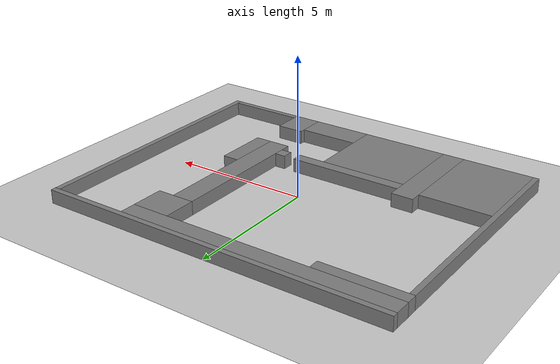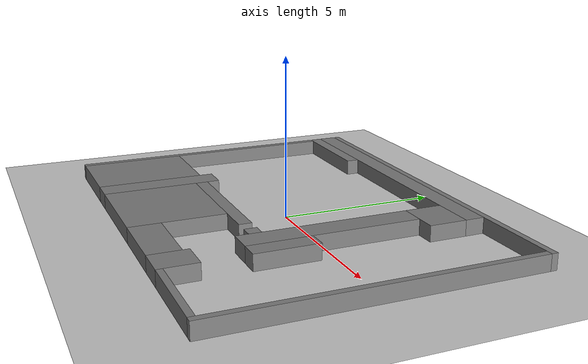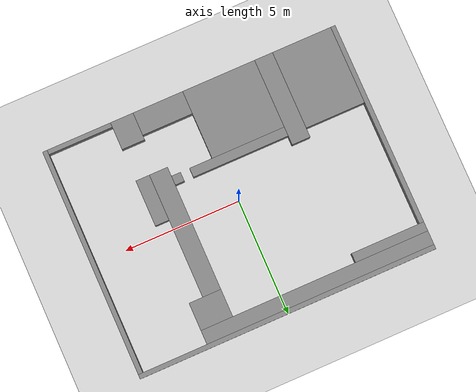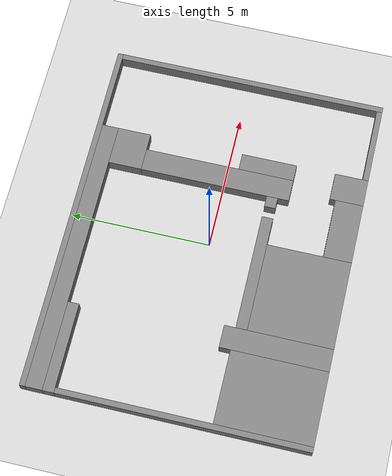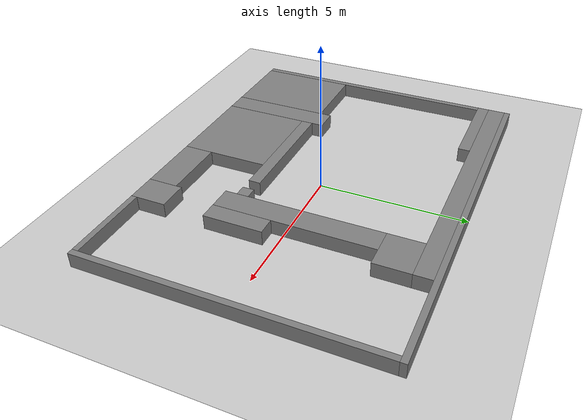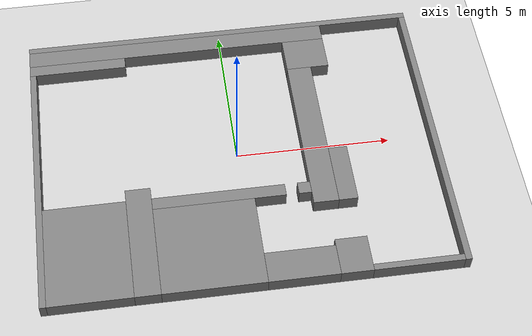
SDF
<?xml version="1.0"?>
<sdf version="1.8">
  <world name="project_map">
    <physics type="ode">
      <real_time_update_rate>1000.0</real_time_update_rate>
      <max_step_size>0.001</max_step_size>
      <real_time_factor>1</real_time_factor>
    </physics>
    <plugin filename="gz-sim-physics-system" name="gz::sim::systems::Physics"/>
    <plugin filename="gz-sim-user-commands-system" name="gz::sim::systems::UserCommands"/>
    <plugin filename="gz-sim-scene-broadcaster-system" name="gz::sim::systems::SceneBroadcaster"/>
    <plugin filename="gz-sim-sensors-system" name="gz::sim::systems::Sensors">
      <render_engine>ogre2</render_engine>
    </plugin>
    <plugin filename="gz-sim-imu-system" name="gz::sim::systems::Imu"/>

    <include>
      <uri>https://fuel.gazebosim.org/1.0/OpenRobotics/models/Ground Plane</uri>
    </include>
    <include>
      <uri>https://fuel.gazebosim.org/1.0/OpenRobotics/models/Sun</uri>
    </include>

    <model name="wall_0">
      <static>true</static>
      <pose>0.000 4.900 0.250 0 0 0</pose>
      <link name="link">
        <collision name="collision">
          <geometry><box><size>13.000 0.200 0.5</size></box></geometry>
        </collision>
        <visual name="visual">
          <geometry><box><size>13.000 0.200 0.5</size></box></geometry>
          <material>
            <ambient>0.3 0.3 0.3 1</ambient>
            <diffuse>0.5 0.5 0.5 1</diffuse>
          </material>
        </visual>
      </link>
    </model>
    <model name="wall_1">
      <static>true</static>
      <pose>-1.500 4.500 0.250 0 0 0</pose>
      <link name="link">
        <collision name="collision">
          <geometry><box><size>10.000 0.600 0.5</size></box></geometry>
        </collision>
        <visual name="visual">
          <geometry><box><size>10.000 0.600 0.5</size></box></geometry>
          <material>
            <ambient>0.3 0.3 0.3 1</ambient>
            <diffuse>0.5 0.5 0.5 1</diffuse>
          </material>
        </visual>
      </link>
    </model>
    <model name="wall_2">
      <static>true</static>
      <pose>6.400 -0.100 0.250 0 0 0</pose>
      <link name="link">
        <collision name="collision">
          <geometry><box><size>0.200 9.800 0.5</size></box></geometry>
        </collision>
        <visual name="visual">
          <geometry><box><size>0.200 9.800 0.5</size></box></geometry>
          <material>
            <ambient>0.3 0.3 0.3 1</ambient>
            <diffuse>0.5 0.5 0.5 1</diffuse>
          </material>
        </visual>
      </link>
    </model>
    <model name="wall_3">
      <static>true</static>
      <pose>-4.900 4.000 0.250 0 0 0</pose>
      <link name="link">
        <collision name="collision">
          <geometry><box><size>3.200 0.400 0.5</size></box></geometry>
        </collision>
        <visual name="visual">
          <geometry><box><size>3.200 0.400 0.5</size></box></geometry>
          <material>
            <ambient>0.3 0.3 0.3 1</ambient>
            <diffuse>0.5 0.5 0.5 1</diffuse>
          </material>
        </visual>
      </link>
    </model>
    <model name="wall_4">
      <static>true</static>
      <pose>2.800 3.600 0.250 0 0 0</pose>
      <link name="link">
        <collision name="collision">
          <geometry><box><size>1.400 1.200 0.5</size></box></geometry>
        </collision>
        <visual name="visual">
          <geometry><box><size>1.400 1.200 0.5</size></box></geometry>
          <material>
            <ambient>0.3 0.3 0.3 1</ambient>
            <diffuse>0.5 0.5 0.5 1</diffuse>
          </material>
        </visual>
      </link>
    </model>
    <model name="wall_5">
      <static>true</static>
      <pose>-6.400 -0.600 0.250 0 0 0</pose>
      <link name="link">
        <collision name="collision">
          <geometry><box><size>0.200 8.800 0.5</size></box></geometry>
        </collision>
        <visual name="visual">
          <geometry><box><size>0.200 8.800 0.5</size></box></geometry>
          <material>
            <ambient>0.3 0.3 0.3 1</ambient>
            <diffuse>0.5 0.5 0.5 1</diffuse>
          </material>
        </visual>
      </link>
    </model>
    <model name="wall_6">
      <static>true</static>
      <pose>2.500 0.300 0.250 0 0 0</pose>
      <link name="link">
        <collision name="collision">
          <geometry><box><size>0.800 5.400 0.5</size></box></geometry>
        </collision>
        <visual name="visual">
          <geometry><box><size>0.800 5.400 0.5</size></box></geometry>
          <material>
            <ambient>0.3 0.3 0.3 1</ambient>
            <diffuse>0.5 0.5 0.5 1</diffuse>
          </material>
        </visual>
      </link>
    </model>
    <model name="wall_7">
      <static>true</static>
      <pose>3.200 -1.400 0.250 0 0 0</pose>
      <link name="link">
        <collision name="collision">
          <geometry><box><size>0.600 2.000 0.5</size></box></geometry>
        </collision>
        <visual name="visual">
          <geometry><box><size>0.600 2.000 0.5</size></box></geometry>
          <material>
            <ambient>0.3 0.3 0.3 1</ambient>
            <diffuse>0.5 0.5 0.5 1</diffuse>
          </material>
        </visual>
      </link>
    </model>
    <model name="wall_8">
      <static>true</static>
      <pose>-3.300 -3.100 0.250 0 0 0</pose>
      <link name="link">
        <collision name="collision">
          <geometry><box><size>0.800 3.800 0.5</size></box></geometry>
        </collision>
        <visual name="visual">
          <geometry><box><size>0.800 3.800 0.5</size></box></geometry>
          <material>
            <ambient>0.3 0.3 0.3 1</ambient>
            <diffuse>0.5 0.5 0.5 1</diffuse>
          </material>
        </visual>
      </link>
    </model>
    <model name="wall_9">
      <static>true</static>
      <pose>-5.000 -3.300 0.250 0 0 0</pose>
      <link name="link">
        <collision name="collision">
          <geometry><box><size>2.600 3.400 0.5</size></box></geometry>
        </collision>
        <visual name="visual">
          <geometry><box><size>2.600 3.400 0.5</size></box></geometry>
          <material>
            <ambient>0.3 0.3 0.3 1</ambient>
            <diffuse>0.5 0.5 0.5 1</diffuse>
          </material>
        </visual>
      </link>
    </model>
    <model name="wall_10">
      <static>true</static>
      <pose>-0.800 -1.800 0.250 0 0 0</pose>
      <link name="link">
        <collision name="collision">
          <geometry><box><size>4.200 0.400 0.5</size></box></geometry>
        </collision>
        <visual name="visual">
          <geometry><box><size>4.200 0.400 0.5</size></box></geometry>
          <material>
            <ambient>0.3 0.3 0.3 1</ambient>
            <diffuse>0.5 0.5 0.5 1</diffuse>
          </material>
        </visual>
      </link>
    </model>
    <model name="wall_11">
      <static>true</static>
      <pose>1.900 -1.800 0.250 0 0 0</pose>
      <link name="link">
        <collision name="collision">
          <geometry><box><size>0.400 0.400 0.5</size></box></geometry>
        </collision>
        <visual name="visual">
          <geometry><box><size>0.400 0.400 0.5</size></box></geometry>
          <material>
            <ambient>0.3 0.3 0.3 1</ambient>
            <diffuse>0.5 0.5 0.5 1</diffuse>
          </material>
        </visual>
      </link>
    </model>
    <model name="wall_12">
      <static>true</static>
      <pose>-1.300 -3.500 0.250 0 0 0</pose>
      <link name="link">
        <collision name="collision">
          <geometry><box><size>3.200 3.000 0.5</size></box></geometry>
        </collision>
        <visual name="visual">
          <geometry><box><size>3.200 3.000 0.5</size></box></geometry>
          <material>
            <ambient>0.3 0.3 0.3 1</ambient>
            <diffuse>0.5 0.5 0.5 1</diffuse>
          </material>
        </visual>
      </link>
    </model>
    <model name="wall_13">
      <static>true</static>
      <pose>3.000 -4.400 0.250 0 0 0</pose>
      <link name="link">
        <collision name="collision">
          <geometry><box><size>1.000 1.200 0.5</size></box></geometry>
        </collision>
        <visual name="visual">
          <geometry><box><size>1.000 1.200 0.5</size></box></geometry>
          <material>
            <ambient>0.3 0.3 0.3 1</ambient>
            <diffuse>0.5 0.5 0.5 1</diffuse>
          </material>
        </visual>
      </link>
    </model>
    <model name="wall_14">
      <static>true</static>
      <pose>1.400 -4.500 0.250 0 0 0</pose>
      <link name="link">
        <collision name="collision">
          <geometry><box><size>2.200 1.000 0.5</size></box></geometry>
        </collision>
        <visual name="visual">
          <geometry><box><size>2.200 1.000 0.5</size></box></geometry>
          <material>
            <ambient>0.3 0.3 0.3 1</ambient>
            <diffuse>0.5 0.5 0.5 1</diffuse>
          </material>
        </visual>
      </link>
    </model>
    <model name="wall_15">
      <static>true</static>
      <pose>4.900 -4.900 0.250 0 0 0</pose>
      <link name="link">
        <collision name="collision">
          <geometry><box><size>2.800 0.200 0.5</size></box></geometry>
        </collision>
        <visual name="visual">
          <geometry><box><size>2.800 0.200 0.5</size></box></geometry>
          <material>
            <ambient>0.3 0.3 0.3 1</ambient>
            <diffuse>0.5 0.5 0.5 1</diffuse>
          </material>
        </visual>
      </link>
    </model>
  </world>
</sdf>
